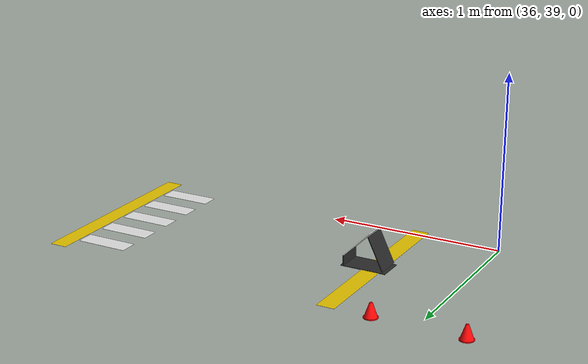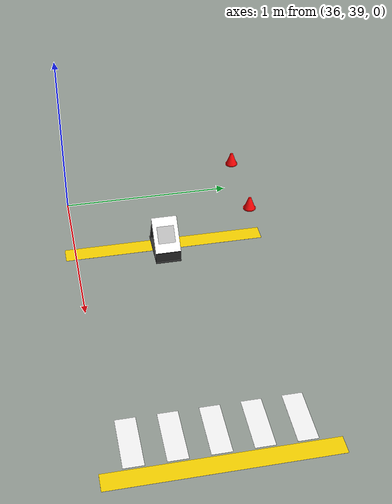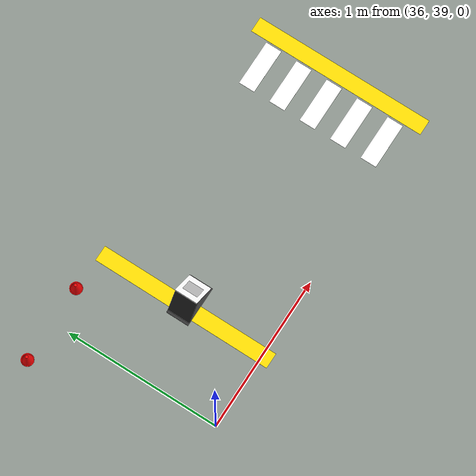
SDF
<sdf version="1.6">
 <world name="competition_scene">
  <model name="comp_region2">
   <static>true</static>
   <link name="body">
    <inertial>
     <pose>0 0 0.04 0 0 0</pose>
     <mass>0.1</mass>
     <inertia><ixx>0.001</ixx><iyy>0.001</iyy><izz>0.001</izz><ixy>0</ixy><ixz>0</ixz><iyz>0</iyz></inertia>
    </inertial>
    <visual name="yellow_0">
     <pose>-0.8275000000000012 0 0.001 0 0 0</pose>
     <geometry><box><size>0.1 1.1700000000000017 0.0006</size></box></geometry>
     <material><ambient>1 0.85 0 1</ambient><diffuse>1 0.85 0 1</diffuse><specular>0 0 0 1</specular></material>
     <cast_shadows>false</cast_shadows>
    </visual>
    <visual name="yellow_1">
     <pose>0.8275000000000012 0 0.001 0 0 0</pose>
     <geometry><box><size>0.1 1.1700000000000017 0.0006</size></box></geometry>
     <material><ambient>1 0.85 0 1</ambient><diffuse>1 0.85 0 1</diffuse><specular>0 0 0 1</specular></material>
     <cast_shadows>false</cast_shadows>
    </visual>
   </link>
   <pose>37.3175 39.525 0 0 0 3.141592653589793</pose>
  </model>
  <model name="comp_crosswalk">
   <static>true</static>
   <link name="body">
    <inertial>
     <pose>0 0 0.04 0 0 0</pose>
     <mass>0.1</mass>
     <inertia><ixx>0.001</ixx><iyy>0.001</iyy><izz>0.001</izz><ixy>0</ixy><ixz>0</ixz><iyz>0</iyz></inertia>
    </inertial>
    <visual name="paper_0">
     <pose>0 -0.42 0.001 0 0 0</pose>
     <geometry><box><size>0.297 0.105 0.0006</size></box></geometry>
     <material><ambient>1 1 1 1</ambient><diffuse>1 1 1 1</diffuse><specular>0 0 0 1</specular></material>
     <cast_shadows>false</cast_shadows>
    </visual>
    <visual name="paper_1">
     <pose>0 -0.21 0.001 0 0 0</pose>
     <geometry><box><size>0.297 0.105 0.0006</size></box></geometry>
     <material><ambient>1 1 1 1</ambient><diffuse>1 1 1 1</diffuse><specular>0 0 0 1</specular></material>
     <cast_shadows>false</cast_shadows>
    </visual>
    <visual name="paper_2">
     <pose>0 0.0 0.001 0 0 0</pose>
     <geometry><box><size>0.297 0.105 0.0006</size></box></geometry>
     <material><ambient>1 1 1 1</ambient><diffuse>1 1 1 1</diffuse><specular>0 0 0 1</specular></material>
     <cast_shadows>false</cast_shadows>
    </visual>
    <visual name="paper_3">
     <pose>0 0.21 0.001 0 0 0</pose>
     <geometry><box><size>0.297 0.105 0.0006</size></box></geometry>
     <material><ambient>1 1 1 1</ambient><diffuse>1 1 1 1</diffuse><specular>0 0 0 1</specular></material>
     <cast_shadows>false</cast_shadows>
    </visual>
    <visual name="paper_4">
     <pose>0 0.42 0.001 0 0 0</pose>
     <geometry><box><size>0.297 0.105 0.0006</size></box></geometry>
     <material><ambient>1 1 1 1</ambient><diffuse>1 1 1 1</diffuse><specular>0 0 0 1</specular></material>
     <cast_shadows>false</cast_shadows>
    </visual>
   </link>
   <pose>37.9365 39.525 0 0 0 3.141592653589793</pose>
  </model>
  <model name="comp_task2_qr">
   <static>true</static>
   <link name="body">
    <inertial>
     <pose>0 0 0.04 0 0 0</pose>
     <mass>0.1</mass>
     <inertia><ixx>0.001</ixx><iyy>0.001</iyy><izz>0.001</izz><ixy>0</ixy><ixz>0</ixz><iyz>0</iyz></inertia>
    </inertial>
    <visual name="front_panel">
     <pose>0 0 0.135 0 0.7853981633974483 0</pose>
     <geometry><box><size>0.004 0.148 0.21</size></box></geometry>
     <material><ambient>1 1 1 1</ambient><diffuse>1 1 1 1</diffuse><specular>0 0 0 1</specular></material>
     <cast_shadows>false</cast_shadows>
    </visual>
    <collision name="front_panel">
     <pose>0 0 0.135 0 0.7853981633974483 0</pose>
     <geometry><box><size>0.004 0.148 0.21</size></box></geometry>
    </collision>
    <visual name="front_support">
     <pose>-0.07424621202458748 0 0.03037689398770626 0 0 0</pose>
     <geometry><box><size>0.006 0.148 0.06075378797541252</size></box></geometry>
     <material>
      <ambient>0.15 0.15 0.15 1</ambient>
      <diffuse>0.15 0.15 0.15 1</diffuse>
      <specular>0 0 0 1</specular>
     </material>
     <cast_shadows>false</cast_shadows>
    </visual>
    <collision name="front_support">
     <pose>-0.07424621202458748 0 0.03037689398770626 0 0 0</pose>
     <geometry><box><size>0.006 0.148 0.06075378797541252</size></box></geometry>
    </collision>
    <visual name="rear_leg">
     <pose>0.11 0 0.1 0 -0.45 0</pose>
     <geometry><box><size>0.004 0.148 0.2</size></box></geometry>
     <material>
      <ambient>0.15 0.15 0.15 1</ambient>
      <diffuse>0.15 0.15 0.15 1</diffuse>
      <specular>0 0 0 1</specular>
     </material>
     <cast_shadows>false</cast_shadows>
    </visual>
    <collision name="rear_leg">
     <pose>0.11 0 0.1 0 -0.45 0</pose>
     <geometry><box><size>0.004 0.148 0.2</size></box></geometry>
    </collision>
    <visual name="base">
     <pose>0.04 0 0.002 0 0 0</pose>
     <geometry><box><size>0.26 0.148 0.004</size></box></geometry>
     <material>
      <ambient>0.2 0.2 0.2 1</ambient>
      <diffuse>0.2 0.2 0.2 1</diffuse>
      <specular>0 0 0 1</specular>
     </material>
     <cast_shadows>false</cast_shadows>
    </visual>
    <collision name="base">
     <pose>0.04 0 0.002 0 0 0</pose>
     <geometry><box><size>0.26 0.148 0.004</size></box></geometry>
    </collision>
    <visual name="qr">
     <pose>-0.0016263455967290594 0 0.13662634559672907 0 0.7853981633974483 0</pose>
     <geometry><mesh><uri>model://comp_qr_stand/meshes/comp_qr_stand_qr.dae</uri></mesh></geometry>
     <material>
      <script>
       <uri>model://comp_qr_stand/materials/scripts</uri>
       <uri>model://comp_qr_stand/materials/textures</uri>
       <name>competition/comp_qr_stand/qr</name>
      </script>
     </material>
     <cast_shadows>false</cast_shadows>
    </visual>
   </link>
   <pose>36.5737289934626 39.525 0 0 0 3.141592653589793</pose>
  </model>
  <model name="comp_guide_outer_000">
   <static>false</static>
   <link name="body">
    <inertial>
     <pose>0 0 0.025 0 0 0</pose>
     <mass>0.035</mass>
     <inertia>
      <ixx>3.1975416666666676e-05</ixx>
      <iyy>3.1975416666666676e-05</iyy>
      <izz>2.6617500000000004e-05</izz>
      <ixy>0</ixy>
      <ixz>0</ixz>
      <iyz>0</iyz>
     </inertia>
    </inertial>
    <visual name="cone">
     <geometry><mesh><uri>model://comp_cone_red/meshes/cone.dae</uri></mesh></geometry>
     <material>
      <ambient>1 0.02 0.02 1</ambient>
      <diffuse>1 0.02 0.02 1</diffuse>
      <specular>0 0 0 1</specular>
     </material>
    </visual>
    <collision name="cone">
     <geometry><mesh><uri>model://comp_cone_red/meshes/cone.dae</uri></mesh></geometry>
     <surface>
      <friction><ode><mu>0.8</mu><mu2>0.8</mu2></ode></friction>
      <contact><ode><kp>100000</kp><kd>2</kd><max_vel>0.1</max_vel><min_depth>5e-05</min_depth></ode></contact>
     </surface>
    </collision>
   </link>
   <pose>36.240000000000016 40.11 0.001 0 0 3.141592653589793</pose>
  </model>
  <model name="comp_guide_outer_001">
   <static>false</static>
   <link name="body">
    <inertial>
     <pose>0 0 0.025 0 0 0</pose>
     <mass>0.035</mass>
     <inertia>
      <ixx>3.1975416666666676e-05</ixx>
      <iyy>3.1975416666666676e-05</iyy>
      <izz>2.6617500000000004e-05</izz>
      <ixy>0</ixy>
      <ixz>0</ixz>
      <iyz>0</iyz>
     </inertia>
    </inertial>
    <visual name="cone">
     <geometry><mesh><uri>model://comp_cone_red/meshes/cone.dae</uri></mesh></geometry>
     <material>
      <ambient>1 0.02 0.02 1</ambient>
      <diffuse>1 0.02 0.02 1</diffuse>
      <specular>0 0 0 1</specular>
     </material>
    </visual>
    <collision name="cone">
     <geometry><mesh><uri>model://comp_cone_red/meshes/cone.dae</uri></mesh></geometry>
     <surface>
      <friction><ode><mu>0.8</mu><mu2>0.8</mu2></ode></friction>
      <contact><ode><kp>100000</kp><kd>2</kd><max_vel>0.1</max_vel><min_depth>5e-05</min_depth></ode></contact>
     </surface>
    </collision>
   </link>
   <pose>35.740000000000016 40.11 0.001 0 0 3.141592653589793</pose>
  </model>
 </world>
</sdf>
